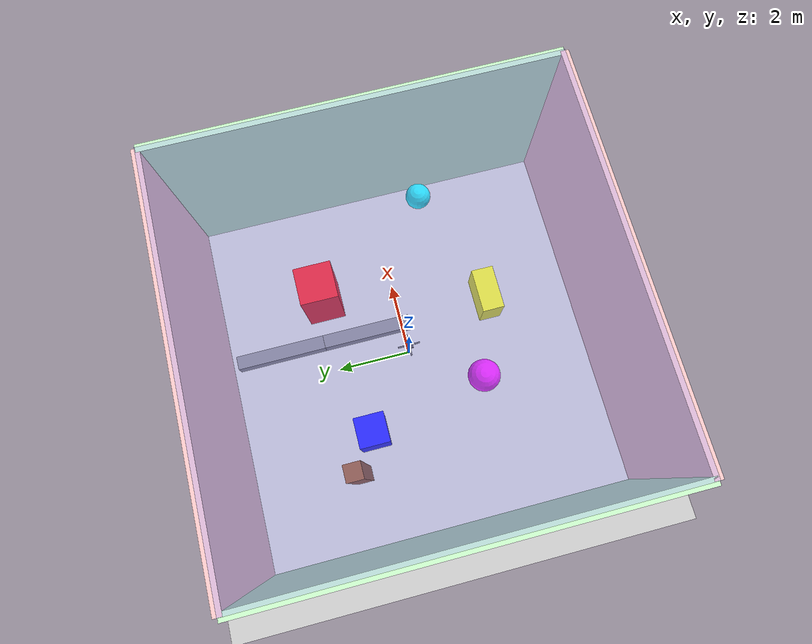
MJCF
<mujoco>
  <option gravity="0 0 -9.81" timestep="0.002"/>

  <worldbody>
    <!-- Ground plane -->
    <geom name="ground" type="plane" size="20 20 0.1" rgba="0.8 0.8 0.8 1"/>

    <!-- Room boundaries (walls and ceiling) -->
    <geom name="wall_north" type="box" size="5 0.1 2.5" pos="0 5 2.5" rgba="1 0.8 0.8 1"/>
    <geom name="wall_south" type="box" size="5 0.1 2.5" pos="0 -5 2.5" rgba="1 0.8 0.8 1"/>
    <geom name="wall_east" type="box" size="0.1 5 2.5" pos="5 0 2.5" rgba="0.8 1 0.8 1"/>
    <geom name="wall_west" type="box" size="0.1 5 2.5" pos="-5 0 2.5" rgba="0.8 1 0.8 1"/>
    <geom name="ceiling" type="box" size="5 5 0.05" pos="0 0 5" rgba="0.6 0.6 1 0.3"/>

    <!-- Obstacles with collision -->
    <geom name="obstacle_tower" type="box" size="0.5 0.5 1.0" pos="2 2 1.0" rgba="1 0 0 1"/>
    <geom name="obstacle_box1" type="box" size="0.4 0.4 0.75" pos="-2 1.5 0.75" rgba="0 0 1 1"/>
    <geom name="obstacle_box2" type="box" size="0.6 0.3 0.5" pos="1 -2.5 0.5" rgba="1 1 0 1"/>
    <geom name="obstacle_sphere1" type="sphere" size="0.4" pos="-1.5 -1.5 2.5" rgba="1 0 1 1"/>
    <geom name="obstacle_sphere2" type="sphere" size="0.3" pos="3 -1 3.5" rgba="0 1 1 1"/>
    <geom name="obstacle_pillar" type="box" size="0.2 0.2 2.0" pos="-3 2 2.0" rgba="0.55 0.27 0.07 1"/>

    <!-- Arch obstacles -->
    <geom name="obstacle_arch1" type="box" size="0.15 1.0 0.15" pos="0 3 3.5" rgba="0.5 0.5 0.5 1"/>
    <geom name="obstacle_arch2" type="box" size="0.15 1.0 0.15" pos="0 1 3.5" rgba="0.5 0.5 0.5 1"/>

    <!-- Drone body -->
    <body name="drone" pos="0 0 1">
      <freejoint/>

      <!-- Main body (central box) -->
      <geom name="body" type="box" size="0.1 0.1 0.03" rgba="0.2 0.2 0.2 1" mass="0.5"/>

      <!-- Four arms -->
      <geom name="arm1" type="box" size="0.15 0.02 0.01" pos="0.15 0 0" rgba="0.3 0.3 0.3 1" mass="0.05"/>
      <geom name="arm2" type="box" size="0.15 0.02 0.01" pos="-0.15 0 0" rgba="0.3 0.3 0.3 1" mass="0.05"/>
      <geom name="arm3" type="box" size="0.02 0.15 0.01" pos="0 0.15 0" rgba="0.3 0.3 0.3 1" mass="0.05"/>
      <geom name="arm4" type="box" size="0.02 0.15 0.01" pos="0 -0.15 0" rgba="0.3 0.3 0.3 1" mass="0.05"/>

      <!-- Four rotors (visual only, smaller to reduce collision) -->
      <geom name="rotor1" type="cylinder" size="0.06 0.01" pos="0.25 0 0.02" rgba="1 0 0 0.7" mass="0.02"/>
      <geom name="rotor2" type="cylinder" size="0.06 0.01" pos="-0.25 0 0.02" rgba="0 1 0 0.7" mass="0.02"/>
      <geom name="rotor3" type="cylinder" size="0.06 0.01" pos="0 0.25 0.02" rgba="0 0 1 0.7" mass="0.02"/>
      <geom name="rotor4" type="cylinder" size="0.06 0.01" pos="0 -0.25 0.02" rgba="1 1 0 0.7" mass="0.02"/>

      <!-- Sites for applying thrust forces -->
      <site name="thrust1" pos="0.25 0 0" size="0.01"/>
      <site name="thrust2" pos="-0.25 0 0" size="0.01"/>
      <site name="thrust3" pos="0 0.25 0" size="0.01"/>
      <site name="thrust4" pos="0 -0.25 0" size="0.01"/>
    </body>
  </worldbody>

  <actuator>
    <!-- Four thrust forces applied at each rotor location -->
    <motor name="motor1" gear="0 0 1" site="thrust1" ctrllimited="true" ctrlrange="0 5"/>
    <motor name="motor2" gear="0 0 1" site="thrust2" ctrllimited="true" ctrlrange="0 5"/>
    <motor name="motor3" gear="0 0 1" site="thrust3" ctrllimited="true" ctrlrange="0 5"/>
    <motor name="motor4" gear="0 0 1" site="thrust4" ctrllimited="true" ctrlrange="0 5"/>
  </actuator>
</mujoco>
